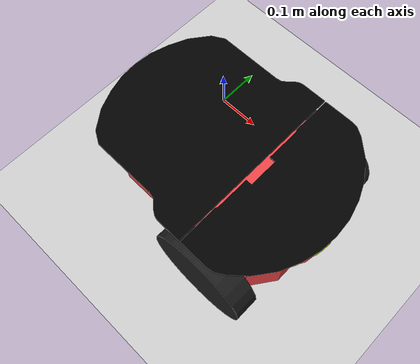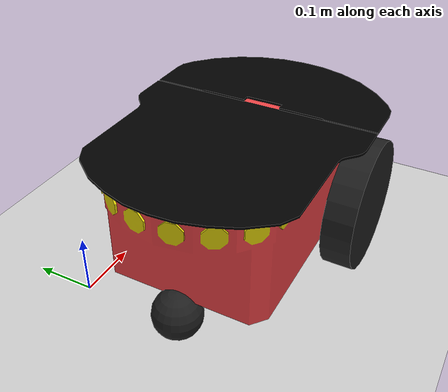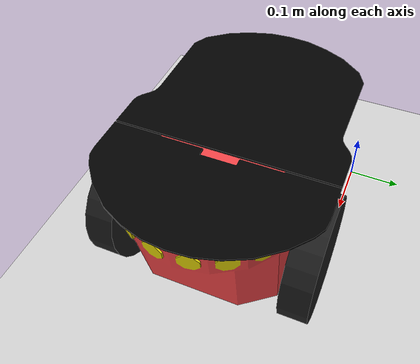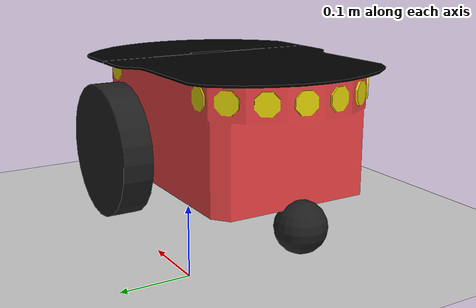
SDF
<sdf version="1.6">
 <world name="default">
  <light name="sun" type="directional">
   <pose>0 0 10 0 -0 0</pose>
   <diffuse>0.8 0.8 0.8 1</diffuse>
   <specular>0.1 0.1 0.1 1</specular>
   <attenuation>
    <range>1000</range>
    <constant>0.9</constant>
    <linear>0.01</linear>
    <quadratic>0.001</quadratic>
   </attenuation>
   <direction>-0.5 0.5 -1</direction>
  </light>
  <model name="ground_plane">
   <static>1</static>
   <link name="link">
    <collision name="collision">
     <geometry><plane><normal>0 0 1</normal><size>100 100</size></plane></geometry>
     <surface><friction><ode><mu>100</mu><mu2>50</mu2></ode></friction></surface>
    </collision>
    <visual name="visual">
     <cast_shadows>0</cast_shadows>
     <geometry><plane><normal>0 0 1</normal><size>100 100</size></plane></geometry>
     <material>
      <script><uri>file://media/materials/scripts/gazebo.material</uri><name>Gazebo/Grey</name></script>
     </material>
    </visual>
   </link>
  </model>
  <gravity>0 0 -9.8</gravity>
  <magnetic_field>6e-06 2.3e-05 -4.2e-05</magnetic_field>
  <atmosphere type="adiabatic"/>
  <physics name="default_physics" default="0" type="ode">
   <max_step_size>0.001</max_step_size>
   <real_time_factor>1</real_time_factor>
   <real_time_update_rate>1000</real_time_update_rate>
  </physics>
  <scene><ambient>0.4 0.4 0.4 1</ambient><background>0.7 0.7 0.7 1</background><shadows>1</shadows></scene>
  <spherical_coordinates>
   <surface_model>EARTH_WGS84</surface_model>
   <latitude_deg>0</latitude_deg>
   <longitude_deg>0</longitude_deg>
   <elevation>0</elevation>
   <heading_deg>0</heading_deg>
  </spherical_coordinates>
  <model name="robot">
   <link name="chassis">
    <pose>0 0 0.16 0 -0 0</pose>
    <inertial>
     <mass>7</mass>
     <inertia><ixx>0.3</ixx><ixy>0</ixy><ixz>0</ixz><iyy>1.3</iyy><iyz>0</iyz><izz>0.3</izz></inertia>
    </inertial>
    <collision name="collision"><geometry><box><size>0.445 0.277 0.17</size></box></geometry></collision>
    <collision name="castor_collision">
     <pose>-0.2 0 -0.12 0 -0 0</pose>
     <geometry><sphere><radius>0.04</radius></sphere></geometry>
     <surface><friction><ode><mu>0</mu><mu2>0</mu2><slip1>1</slip1><slip2>1</slip2></ode></friction></surface>
    </collision>
    <visual name="visual">
     <pose>0 0 0.04 0 -0 0</pose>
     <geometry><mesh><uri>model://pioneer2dx/meshes/chassis.dae</uri><scale>1 1 1</scale></mesh></geometry>
    </visual>
    <visual name="castor_visual">
     <pose>-0.2 0 -0.12 0 -0 0</pose>
     <geometry><sphere><radius>0.04</radius></sphere></geometry>
     <material>
      <script><uri>file://media/materials/scripts/gazebo.material</uri><name>Gazebo/FlatBlack</name></script>
     </material>
    </visual>
   </link>
   <link name="right_wheel">
    <pose>0.1 -0.17 0.11 -0 1.5707 1.5707</pose>
    <inertial>
     <mass>1</mass>
     <inertia><ixx>0.01</ixx><ixy>0</ixy><ixz>0</ixz><iyy>0.01</iyy><iyz>0</iyz><izz>0.01</izz></inertia>
    </inertial>
    <collision name="collision">
     <geometry><cylinder><radius>0.11</radius><length>0.05</length></cylinder></geometry>
     <surface>
      <friction><ode><mu>100000</mu><mu2>100000</mu2><slip1>0</slip1><slip2>0</slip2></ode></friction>
     </surface>
    </collision>
    <visual name="visual">
     <geometry><cylinder><radius>0.11</radius><length>0.05</length></cylinder></geometry>
     <material>
      <script><uri>file://media/materials/scripts/gazebo.material</uri><name>Gazebo/FlatBlack</name></script>
     </material>
    </visual>
   </link>
   <link name="left_wheel">
    <pose>0.1 0.17 0.11 -0 1.5707 1.5707</pose>
    <inertial>
     <mass>1</mass>
     <inertia><ixx>0.01</ixx><ixy>0</ixy><ixz>0</ixz><iyy>0.01</iyy><iyz>0</iyz><izz>0.01</izz></inertia>
    </inertial>
    <collision name="collision">
     <geometry><cylinder><radius>0.11</radius><length>0.05</length></cylinder></geometry>
     <surface>
      <friction><ode><mu>100000</mu><mu2>100000</mu2><slip1>0</slip1><slip2>0</slip2></ode></friction>
     </surface>
    </collision>
    <visual name="visual">
     <geometry><cylinder><radius>0.11</radius><length>0.05</length></cylinder></geometry>
     <material>
      <script><uri>file://media/materials/scripts/gazebo.material</uri><name>Gazebo/FlatBlack</name></script>
     </material>
    </visual>
   </link>
   <joint name="left_wheel_hinge" type="revolute">
    <pose>0 0 -0.03 0 -0 0</pose>
    <child>left_wheel</child>
    <parent>chassis</parent>
    <axis>
     <xyz>0 1 0</xyz>
     <use_parent_model_frame>1</use_parent_model_frame>
     <limit><lower>-1e+16</lower><upper>1e+16</upper></limit>
     <dynamics><spring_reference>0</spring_reference><spring_stiffness>0</spring_stiffness></dynamics>
    </axis>
   </joint>
   <joint name="right_wheel_hinge" type="revolute">
    <pose>0 0 0.03 0 -0 0</pose>
    <child>right_wheel</child>
    <parent>chassis</parent>
    <axis>
     <xyz>0 1 0</xyz>
     <use_parent_model_frame>1</use_parent_model_frame>
     <limit><lower>-1e+16</lower><upper>1e+16</upper></limit>
     <dynamics><spring_reference>0</spring_reference><spring_stiffness>0</spring_stiffness></dynamics>
    </axis>
   </joint>
   <plugin name="differential_drive_controller" filename="libgazebo_ros_diff_drive.so">
    <legacyMode>false</legacyMode>
    <alwaysOn>true</alwaysOn>
    <updateRate>100</updateRate>
    <leftJoint>left_wheel_hinge</leftJoint>
    <rightJoint>right_wheel_hinge</rightJoint>
    <wheelSeparation>0.34</wheelSeparation>
    <wheelDiameter>0.22</wheelDiameter>
    <torque>1</torque>
    <commandTopic>cmd_vel</commandTopic>
    <odometryTopic>odom</odometryTopic>
    <odometryFrame>odom</odometryFrame>
    <robotBaseFrame>chassis</robotBaseFrame>
   </plugin>
   <pose>0.189107 -0.177359 0 0 -0 0</pose>
  </model>
 </world>
</sdf>
